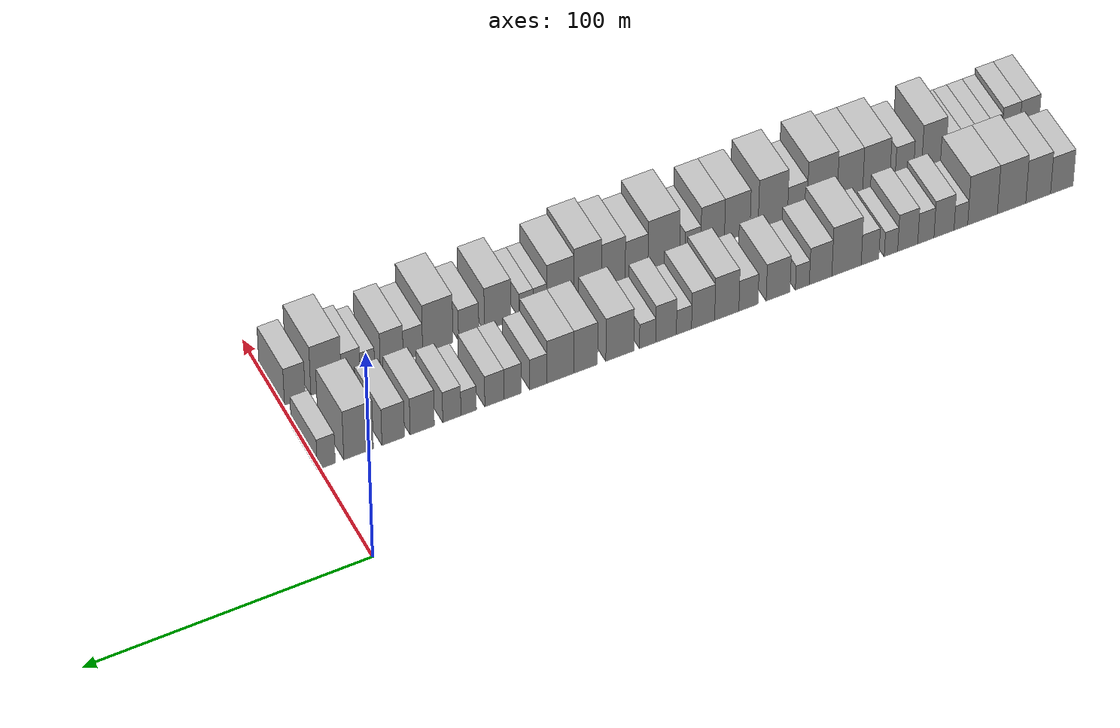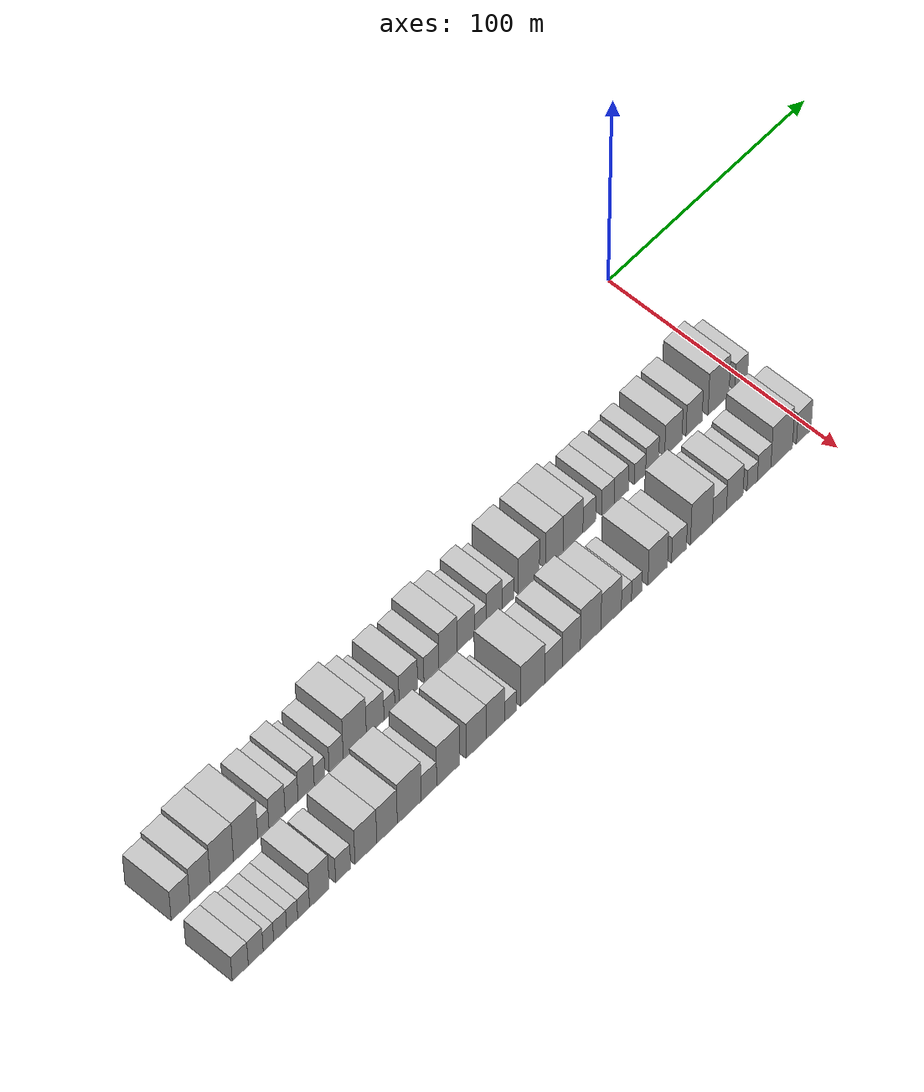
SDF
<sdf version="1.6">
 <world name="default">
  <model name="building_1">
   <static>1</static>
   <pose>50.0000 -270.7462 0 0.000000 0.000000 0.000000</pose>
   <link name="link">
    <pose>0 0 9.00 0 0 0</pose>
    <collision name="collision"><geometry><box><size>20.0000 8.5076 18.0000</size></box></geometry></collision>
    <visual name="visual">
     <cast_shadows>0</cast_shadows>
     <geometry><box><size>20.0000 8.5076 18.0000</size></box></geometry>
     <material>
      <script>
       <uri>model://HANNAS_wall/materials/scripts</uri>
       <uri>model://HANNAS_wall/materials/textures</uri>
       <name>vrc/HANNAS_wall</name>
      </script>
     </material>
    </visual>
   </link>
  </model>
  <model name="building_2">
   <static>1</static>
   <pose>50.0000 -261.8234 0 0.000000 0.000000 0.000000</pose>
   <link name="link">
    <pose>0 0 10.50 0 0 0</pose>
    <collision name="collision"><geometry><box><size>20.0000 9.3380 21.0000</size></box></geometry></collision>
    <visual name="visual">
     <cast_shadows>0</cast_shadows>
     <geometry><box><size>20.0000 9.3380 21.0000</size></box></geometry>
     <material>
      <script>
       <uri>model://HANNAS_wall/materials/scripts</uri>
       <uri>model://HANNAS_wall/materials/textures</uri>
       <name>vrc/HANNAS_wall</name>
      </script>
     </material>
    </visual>
   </link>
  </model>
  <model name="building_3">
   <static>1</static>
   <pose>50.0000 -251.8180 0 0.000000 0.000000 0.000000</pose>
   <link name="link">
    <pose>0 0 12.00 0 0 0</pose>
    <collision name="collision"><geometry><box><size>20.0000 10.6729 24.0000</size></box></geometry></collision>
    <visual name="visual">
     <cast_shadows>0</cast_shadows>
     <geometry><box><size>20.0000 10.6729 24.0000</size></box></geometry>
     <material>
      <script>
       <uri>model://HANNAS_wall/materials/scripts</uri>
       <uri>model://HANNAS_wall/materials/textures</uri>
       <name>vrc/HANNAS_wall</name>
      </script>
     </material>
    </visual>
   </link>
  </model>
  <model name="building_4">
   <static>1</static>
   <pose>50.0000 -240.9079 0 0.000000 0.000000 0.000000</pose>
   <link name="link">
    <pose>0 0 12.00 0 0 0</pose>
    <collision name="collision"><geometry><box><size>20.0000 11.1472 24.0000</size></box></geometry></collision>
    <visual name="visual">
     <cast_shadows>0</cast_shadows>
     <geometry><box><size>20.0000 11.1472 24.0000</size></box></geometry>
     <material>
      <script>
       <uri>model://HANNAS_wall/materials/scripts</uri>
       <uri>model://HANNAS_wall/materials/textures</uri>
       <name>vrc/HANNAS_wall</name>
      </script>
     </material>
    </visual>
   </link>
  </model>
  <model name="building_5">
   <static>1</static>
   <pose>50.0000 -232.7691 0 0.000000 0.000000 0.000000</pose>
   <link name="link">
    <pose>0 0 6.00 0 0 0</pose>
    <collision name="collision"><geometry><box><size>20.0000 5.1303 12.0000</size></box></geometry></collision>
    <visual name="visual">
     <cast_shadows>0</cast_shadows>
     <geometry><box><size>20.0000 5.1303 12.0000</size></box></geometry>
     <material>
      <script>
       <uri>model://HANNAS_wall/materials/scripts</uri>
       <uri>model://HANNAS_wall/materials/textures</uri>
       <name>vrc/HANNAS_wall</name>
      </script>
     </material>
    </visual>
   </link>
  </model>
  <model name="building_6">
   <static>1</static>
   <pose>50.0000 -226.4638 0 0.000000 0.000000 0.000000</pose>
   <link name="link">
    <pose>0 0 9.00 0 0 0</pose>
    <collision name="collision"><geometry><box><size>20.0000 7.4803 18.0000</size></box></geometry></collision>
    <visual name="visual">
     <cast_shadows>0</cast_shadows>
     <geometry><box><size>20.0000 7.4803 18.0000</size></box></geometry>
     <material>
      <script>
       <uri>model://HANNAS_wall/materials/scripts</uri>
       <uri>model://HANNAS_wall/materials/textures</uri>
       <name>vrc/HANNAS_wall</name>
      </script>
     </material>
    </visual>
   </link>
  </model>
  <model name="building_7">
   <static>1</static>
   <pose>50.0000 -219.6944 0 0.000000 0.000000 0.000000</pose>
   <link name="link">
    <pose>0 0 7.50 0 0 0</pose>
    <collision name="collision"><geometry><box><size>20.0000 6.0585 15.0000</size></box></geometry></collision>
    <visual name="visual">
     <cast_shadows>0</cast_shadows>
     <geometry><box><size>20.0000 6.0585 15.0000</size></box></geometry>
     <material>
      <script>
       <uri>model://HANNAS_wall/materials/scripts</uri>
       <uri>model://HANNAS_wall/materials/textures</uri>
       <name>vrc/HANNAS_wall</name>
      </script>
     </material>
    </visual>
   </link>
  </model>
  <model name="building_8">
   <static>1</static>
   <pose>50.0000 -212.9263 0 0.000000 0.000000 0.000000</pose>
   <link name="link">
    <pose>0 0 9.00 0 0 0</pose>
    <collision name="collision"><geometry><box><size>20.0000 7.4778 18.0000</size></box></geometry></collision>
    <visual name="visual">
     <cast_shadows>0</cast_shadows>
     <geometry><box><size>20.0000 7.4778 18.0000</size></box></geometry>
     <material>
      <script>
       <uri>model://HANNAS_wall/materials/scripts</uri>
       <uri>model://HANNAS_wall/materials/textures</uri>
       <name>vrc/HANNAS_wall</name>
      </script>
     </material>
    </visual>
   </link>
  </model>
  <model name="building_9">
   <static>1</static>
   <pose>50.0000 -206.6918 0 0.000000 0.000000 0.000000</pose>
   <link name="link">
    <pose>0 0 6.00 0 0 0</pose>
    <collision name="collision"><geometry><box><size>20.0000 4.9912 12.0000</size></box></geometry></collision>
    <visual name="visual">
     <cast_shadows>0</cast_shadows>
     <geometry><box><size>20.0000 4.9912 12.0000</size></box></geometry>
     <material>
      <script>
       <uri>model://HANNAS_wall/materials/scripts</uri>
       <uri>model://HANNAS_wall/materials/textures</uri>
       <name>vrc/HANNAS_wall</name>
      </script>
     </material>
    </visual>
   </link>
  </model>
  <model name="building_10">
   <static>1</static>
   <pose>50.0000 -198.9097 0 0.000000 0.000000 0.000000</pose>
   <link name="link">
    <pose>0 0 7.50 0 0 0</pose>
    <collision name="collision"><geometry><box><size>20.0000 6.5731 15.0000</size></box></geometry></collision>
    <visual name="visual">
     <cast_shadows>0</cast_shadows>
     <geometry><box><size>20.0000 6.5731 15.0000</size></box></geometry>
     <material>
      <script>
       <uri>model://HANNAS_wall/materials/scripts</uri>
       <uri>model://HANNAS_wall/materials/textures</uri>
       <name>vrc/HANNAS_wall</name>
      </script>
     </material>
    </visual>
   </link>
  </model>
  <model name="building_11">
   <static>1</static>
   <pose>50.0000 -190.1880 0 0.000000 0.000000 0.000000</pose>
   <link name="link">
    <pose>0 0 12.00 0 0 0</pose>
    <collision name="collision"><geometry><box><size>20.0000 10.8702 24.0000</size></box></geometry></collision>
    <visual name="visual">
     <cast_shadows>0</cast_shadows>
     <geometry><box><size>20.0000 10.8702 24.0000</size></box></geometry>
     <material>
      <script>
       <uri>model://HANNAS_wall/materials/scripts</uri>
       <uri>model://HANNAS_wall/materials/textures</uri>
       <name>vrc/HANNAS_wall</name>
      </script>
     </material>
    </visual>
   </link>
  </model>
  <model name="building_12">
   <static>1</static>
   <pose>50.0000 -180.5997 0 0.000000 0.000000 0.000000</pose>
   <link name="link">
    <pose>0 0 9.00 0 0 0</pose>
    <collision name="collision"><geometry><box><size>20.0000 8.3064 18.0000</size></box></geometry></collision>
    <visual name="visual">
     <cast_shadows>0</cast_shadows>
     <geometry><box><size>20.0000 8.3064 18.0000</size></box></geometry>
     <material>
      <script>
       <uri>model://HANNAS_wall/materials/scripts</uri>
       <uri>model://HANNAS_wall/materials/textures</uri>
       <name>vrc/HANNAS_wall</name>
      </script>
     </material>
    </visual>
   </link>
  </model>
  <model name="building_13">
   <static>1</static>
   <pose>50.0000 -173.8752 0 0.000000 0.000000 0.000000</pose>
   <link name="link">
    <pose>0 0 6.00 0 0 0</pose>
    <collision name="collision"><geometry><box><size>20.0000 5.1427 12.0000</size></box></geometry></collision>
    <visual name="visual">
     <cast_shadows>0</cast_shadows>
     <geometry><box><size>20.0000 5.1427 12.0000</size></box></geometry>
     <material>
      <script>
       <uri>model://HANNAS_wall/materials/scripts</uri>
       <uri>model://HANNAS_wall/materials/textures</uri>
       <name>vrc/HANNAS_wall</name>
      </script>
     </material>
    </visual>
   </link>
  </model>
  <model name="building_14">
   <static>1</static>
   <pose>50.0000 -164.9254 0 0.000000 0.000000 0.000000</pose>
   <link name="link">
    <pose>0 0 9.00 0 0 0</pose>
    <collision name="collision"><geometry><box><size>20.0000 8.7569 18.0000</size></box></geometry></collision>
    <visual name="visual">
     <cast_shadows>0</cast_shadows>
     <geometry><box><size>20.0000 8.7569 18.0000</size></box></geometry>
     <material>
      <script>
       <uri>model://HANNAS_wall/materials/scripts</uri>
       <uri>model://HANNAS_wall/materials/textures</uri>
       <name>vrc/HANNAS_wall</name>
      </script>
     </material>
    </visual>
   </link>
  </model>
  <model name="building_15">
   <static>1</static>
   <pose>50.0000 -154.0397 0 0.000000 0.000000 0.000000</pose>
   <link name="link">
    <pose>0 0 7.50 0 0 0</pose>
    <collision name="collision"><geometry><box><size>20.0000 7.0144 15.0000</size></box></geometry></collision>
    <visual name="visual">
     <cast_shadows>0</cast_shadows>
     <geometry><box><size>20.0000 7.0144 15.0000</size></box></geometry>
     <material>
      <script>
       <uri>model://HANNAS_wall/materials/scripts</uri>
       <uri>model://HANNAS_wall/materials/textures</uri>
       <name>vrc/HANNAS_wall</name>
      </script>
     </material>
    </visual>
   </link>
  </model>
  <model name="building_16">
   <static>1</static>
   <pose>50.0000 -146.1024 0 0.000000 0.000000 0.000000</pose>
   <link name="link">
    <pose>0 0 10.50 0 0 0</pose>
    <collision name="collision"><geometry><box><size>20.0000 8.8601 21.0000</size></box></geometry></collision>
    <visual name="visual">
     <cast_shadows>0</cast_shadows>
     <geometry><box><size>20.0000 8.8601 21.0000</size></box></geometry>
     <material>
      <script>
       <uri>model://HANNAS_wall/materials/scripts</uri>
       <uri>model://HANNAS_wall/materials/textures</uri>
       <name>vrc/HANNAS_wall</name>
      </script>
     </material>
    </visual>
   </link>
  </model>
  <model name="building_17">
   <static>1</static>
   <pose>50.0000 -137.4521 0 0.000000 0.000000 0.000000</pose>
   <link name="link">
    <pose>0 0 9.00 0 0 0</pose>
    <collision name="collision"><geometry><box><size>20.0000 8.4406 18.0000</size></box></geometry></collision>
    <visual name="visual">
     <cast_shadows>0</cast_shadows>
     <geometry><box><size>20.0000 8.4406 18.0000</size></box></geometry>
     <material>
      <script>
       <uri>model://HANNAS_wall/materials/scripts</uri>
       <uri>model://HANNAS_wall/materials/textures</uri>
       <name>vrc/HANNAS_wall</name>
      </script>
     </material>
    </visual>
   </link>
  </model>
  <model name="building_18">
   <static>1</static>
   <pose>50.0000 -130.4645 0 0.000000 0.000000 0.000000</pose>
   <link name="link">
    <pose>0 0 6.00 0 0 0</pose>
    <collision name="collision"><geometry><box><size>20.0000 5.5346 12.0000</size></box></geometry></collision>
    <visual name="visual">
     <cast_shadows>0</cast_shadows>
     <geometry><box><size>20.0000 5.5346 12.0000</size></box></geometry>
     <material>
      <script>
       <uri>model://HANNAS_wall/materials/scripts</uri>
       <uri>model://HANNAS_wall/materials/textures</uri>
       <name>vrc/HANNAS_wall</name>
      </script>
     </material>
    </visual>
   </link>
  </model>
  <model name="building_19">
   <static>1</static>
   <pose>50.0000 -123.9493 0 0.000000 0.000000 0.000000</pose>
   <link name="link">
    <pose>0 0 9.00 0 0 0</pose>
    <collision name="collision"><geometry><box><size>20.0000 7.4958 18.0000</size></box></geometry></collision>
    <visual name="visual">
     <cast_shadows>0</cast_shadows>
     <geometry><box><size>20.0000 7.4958 18.0000</size></box></geometry>
     <material>
      <script>
       <uri>model://HANNAS_wall/materials/scripts</uri>
       <uri>model://HANNAS_wall/materials/textures</uri>
       <name>vrc/HANNAS_wall</name>
      </script>
     </material>
    </visual>
   </link>
  </model>
  <model name="building_20">
   <static>1</static>
   <pose>50.0000 -117.2490 0 0.000000 0.000000 0.000000</pose>
   <link name="link">
    <pose>0 0 6.00 0 0 0</pose>
    <collision name="collision"><geometry><box><size>20.0000 5.9047 12.0000</size></box></geometry></collision>
    <visual name="visual">
     <cast_shadows>0</cast_shadows>
     <geometry><box><size>20.0000 5.9047 12.0000</size></box></geometry>
     <material>
      <script>
       <uri>model://HANNAS_wall/materials/scripts</uri>
       <uri>model://HANNAS_wall/materials/textures</uri>
       <name>vrc/HANNAS_wall</name>
      </script>
     </material>
    </visual>
   </link>
  </model>
  <model name="building_21">
   <static>1</static>
   <pose>50.0000 -107.1935 0 0.000000 0.000000 0.000000</pose>
   <link name="link">
    <pose>0 0 10.50 0 0 0</pose>
    <collision name="collision"><geometry><box><size>20.0000 10.2065 21.0000</size></box></geometry></collision>
    <visual name="visual">
     <cast_shadows>0</cast_shadows>
     <geometry><box><size>20.0000 10.2065 21.0000</size></box></geometry>
     <material>
      <script>
       <uri>model://HANNAS_wall/materials/scripts</uri>
       <uri>model://HANNAS_wall/materials/textures</uri>
       <name>vrc/HANNAS_wall</name>
      </script>
     </material>
    </visual>
   </link>
  </model>
  <model name="building_22">
   <static>1</static>
   <pose>50.0000 -94.8351 0 0.000000 0.000000 0.000000</pose>
   <link name="link">
    <pose>0 0 10.50 0 0 0</pose>
    <collision name="collision"><geometry><box><size>20.0000 8.5103 21.0000</size></box></geometry></collision>
    <visual name="visual">
     <cast_shadows>0</cast_shadows>
     <geometry><box><size>20.0000 8.5103 21.0000</size></box></geometry>
     <material>
      <script>
       <uri>model://HANNAS_wall/materials/scripts</uri>
       <uri>model://HANNAS_wall/materials/textures</uri>
       <name>vrc/HANNAS_wall</name>
      </script>
     </material>
    </visual>
   </link>
  </model>
  <model name="building_23">
   <static>1</static>
   <pose>50.0000 -85.7295 0 0.000000 0.000000 0.000000</pose>
   <link name="link">
    <pose>0 0 10.50 0 0 0</pose>
    <collision name="collision"><geometry><box><size>20.0000 9.7010 21.0000</size></box></geometry></collision>
    <visual name="visual">
     <cast_shadows>0</cast_shadows>
     <geometry><box><size>20.0000 9.7010 21.0000</size></box></geometry>
     <material>
      <script>
       <uri>model://HANNAS_wall/materials/scripts</uri>
       <uri>model://HANNAS_wall/materials/textures</uri>
       <name>vrc/HANNAS_wall</name>
      </script>
     </material>
    </visual>
   </link>
  </model>
  <model name="building_24">
   <static>1</static>
   <pose>50.0000 -77.7669 0 0.000000 0.000000 0.000000</pose>
   <link name="link">
    <pose>0 0 7.50 0 0 0</pose>
    <collision name="collision"><geometry><box><size>20.0000 6.2241 15.0000</size></box></geometry></collision>
    <visual name="visual">
     <cast_shadows>0</cast_shadows>
     <geometry><box><size>20.0000 6.2241 15.0000</size></box></geometry>
     <material>
      <script>
       <uri>model://HANNAS_wall/materials/scripts</uri>
       <uri>model://HANNAS_wall/materials/textures</uri>
       <name>vrc/HANNAS_wall</name>
      </script>
     </material>
    </visual>
   </link>
  </model>
  <model name="building_25">
   <static>1</static>
   <pose>50.0000 -68.5766 0 0.000000 0.000000 0.000000</pose>
   <link name="link">
    <pose>0 0 7.50 0 0 0</pose>
    <collision name="collision"><geometry><box><size>20.0000 6.1565 15.0000</size></box></geometry></collision>
    <visual name="visual">
     <cast_shadows>0</cast_shadows>
     <geometry><box><size>20.0000 6.1565 15.0000</size></box></geometry>
     <material>
      <script>
       <uri>model://HANNAS_wall/materials/scripts</uri>
       <uri>model://HANNAS_wall/materials/textures</uri>
       <name>vrc/HANNAS_wall</name>
      </script>
     </material>
    </visual>
   </link>
  </model>
  <model name="building_26">
   <static>1</static>
   <pose>50.0000 -62.0209 0 0.000000 0.000000 0.000000</pose>
   <link name="link">
    <pose>0 0 7.50 0 0 0</pose>
    <collision name="collision"><geometry><box><size>20.0000 6.9550 15.0000</size></box></geometry></collision>
    <visual name="visual">
     <cast_shadows>0</cast_shadows>
     <geometry><box><size>20.0000 6.9550 15.0000</size></box></geometry>
     <material>
      <script>
       <uri>model://HANNAS_wall/materials/scripts</uri>
       <uri>model://HANNAS_wall/materials/textures</uri>
       <name>vrc/HANNAS_wall</name>
      </script>
     </material>
    </visual>
   </link>
  </model>
  <model name="building_27">
   <static>1</static>
   <pose>50.0000 -52.7724 0 0.000000 0.000000 0.000000</pose>
   <link name="link">
    <pose>0 0 6.00 0 0 0</pose>
    <collision name="collision"><geometry><box><size>20.0000 5.5420 12.0000</size></box></geometry></collision>
    <visual name="visual">
     <cast_shadows>0</cast_shadows>
     <geometry><box><size>20.0000 5.5420 12.0000</size></box></geometry>
     <material>
      <script>
       <uri>model://HANNAS_wall/materials/scripts</uri>
       <uri>model://HANNAS_wall/materials/textures</uri>
       <name>vrc/HANNAS_wall</name>
      </script>
     </material>
    </visual>
   </link>
  </model>
  <model name="building_28">
   <static>1</static>
   <pose>50.0000 -46.7659 0 0.000000 0.000000 0.000000</pose>
   <link name="link">
    <pose>0 0 7.50 0 0 0</pose>
    <collision name="collision"><geometry><box><size>20.0000 6.4709 15.0000</size></box></geometry></collision>
    <visual name="visual">
     <cast_shadows>0</cast_shadows>
     <geometry><box><size>20.0000 6.4709 15.0000</size></box></geometry>
     <material>
      <script>
       <uri>model://HANNAS_wall/materials/scripts</uri>
       <uri>model://HANNAS_wall/materials/textures</uri>
       <name>vrc/HANNAS_wall</name>
      </script>
     </material>
    </visual>
   </link>
  </model>
  <model name="building_29">
   <static>1</static>
   <pose>50.0000 -36.2263 0 0.000000 0.000000 0.000000</pose>
   <link name="link">
    <pose>0 0 9.00 0 0 0</pose>
    <collision name="collision"><geometry><box><size>20.0000 8.6084 18.0000</size></box></geometry></collision>
    <visual name="visual">
     <cast_shadows>0</cast_shadows>
     <geometry><box><size>20.0000 8.6084 18.0000</size></box></geometry>
     <material>
      <script>
       <uri>model://HANNAS_wall/materials/scripts</uri>
       <uri>model://HANNAS_wall/materials/textures</uri>
       <name>vrc/HANNAS_wall</name>
      </script>
     </material>
    </visual>
   </link>
  </model>
  <model name="building_30">
   <static>1</static>
   <pose>50.0000 -25.9120 0 0.000000 0.000000 0.000000</pose>
   <link name="link">
    <pose>0 0 9.00 0 0 0</pose>
    <collision name="collision"><geometry><box><size>20.0000 8.0202 18.0000</size></box></geometry></collision>
    <visual name="visual">
     <cast_shadows>0</cast_shadows>
     <geometry><box><size>20.0000 8.0202 18.0000</size></box></geometry>
     <material>
      <script>
       <uri>model://HANNAS_wall/materials/scripts</uri>
       <uri>model://HANNAS_wall/materials/textures</uri>
       <name>vrc/HANNAS_wall</name>
      </script>
     </material>
    </visual>
   </link>
  </model>
  <model name="building_31">
   <static>1</static>
   <pose>50.0000 -13.6503 0 0.000000 0.000000 0.000000</pose>
   <link name="link">
    <pose>0 0 12.00 0 0 0</pose>
    <collision name="collision"><geometry><box><size>20.0000 10.5032 24.0000</size></box></geometry></collision>
    <visual name="visual">
     <cast_shadows>0</cast_shadows>
     <geometry><box><size>20.0000 10.5032 24.0000</size></box></geometry>
     <material>
      <script>
       <uri>model://HANNAS_wall/materials/scripts</uri>
       <uri>model://HANNAS_wall/materials/textures</uri>
       <name>vrc/HANNAS_wall</name>
      </script>
     </material>
    </visual>
   </link>
  </model>
  <model name="building_32">
   <static>1</static>
   <pose>50.0000 -2.2336 0 0.000000 0.000000 0.000000</pose>
   <link name="link">
    <pose>0 0 7.50 0 0 0</pose>
    <collision name="collision"><geometry><box><size>20.0000 6.3303 15.0000</size></box></geometry></collision>
    <visual name="visual">
     <cast_shadows>0</cast_shadows>
     <geometry><box><size>20.0000 6.3303 15.0000</size></box></geometry>
     <material>
      <script>
       <uri>model://HANNAS_wall/materials/scripts</uri>
       <uri>model://HANNAS_wall/materials/textures</uri>
       <name>vrc/HANNAS_wall</name>
      </script>
     </material>
    </visual>
   </link>
  </model>
  <model name="building_67">
   <static>1</static>
   <pose>79.0000 -274.3399 0 0.000000 0.000000 0.000000</pose>
   <link name="link">
    <pose>0 0 7.50 0 0 0</pose>
    <collision name="collision"><geometry><box><size>20.0000 7.3201 15.0000</size></box></geometry></collision>
    <visual name="visual">
     <cast_shadows>0</cast_shadows>
     <geometry><box><size>20.0000 7.3201 15.0000</size></box></geometry>
     <material>
      <script>
       <uri>model://HANNAS_wall/materials/scripts</uri>
       <uri>model://HANNAS_wall/materials/textures</uri>
       <name>vrc/HANNAS_wall</name>
      </script>
     </material>
    </visual>
   </link>
  </model>
  <model name="building_68">
   <static>1</static>
   <pose>79.0000 -267.2750 0 0.000000 0.000000 0.000000</pose>
   <link name="link">
    <pose>0 0 7.50 0 0 0</pose>
    <collision name="collision"><geometry><box><size>20.0000 6.8098 15.0000</size></box></geometry></collision>
    <visual name="visual">
     <cast_shadows>0</cast_shadows>
     <geometry><box><size>20.0000 6.8098 15.0000</size></box></geometry>
     <material>
      <script>
       <uri>model://HANNAS_wall/materials/scripts</uri>
       <uri>model://HANNAS_wall/materials/textures</uri>
       <name>vrc/HANNAS_wall</name>
      </script>
     </material>
    </visual>
   </link>
  </model>
  <model name="building_69">
   <static>1</static>
   <pose>79.0000 -261.4668 0 0.000000 0.000000 0.000000</pose>
   <link name="link">
    <pose>0 0 6.00 0 0 0</pose>
    <collision name="collision"><geometry><box><size>20.0000 4.8066 12.0000</size></box></geometry></collision>
    <visual name="visual">
     <cast_shadows>0</cast_shadows>
     <geometry><box><size>20.0000 4.8066 12.0000</size></box></geometry>
     <material>
      <script>
       <uri>model://HANNAS_wall/materials/scripts</uri>
       <uri>model://HANNAS_wall/materials/textures</uri>
       <name>vrc/HANNAS_wall</name>
      </script>
     </material>
    </visual>
   </link>
  </model>
  <model name="building_70">
   <static>1</static>
   <pose>79.0000 -256.1150 0 0.000000 0.000000 0.000000</pose>
   <link name="link">
    <pose>0 0 6.00 0 0 0</pose>
    <collision name="collision"><geometry><box><size>20.0000 5.8970 12.0000</size></box></geometry></collision>
    <visual name="visual">
     <cast_shadows>0</cast_shadows>
     <geometry><box><size>20.0000 5.8970 12.0000</size></box></geometry>
     <material>
      <script>
       <uri>model://HANNAS_wall/materials/scripts</uri>
       <uri>model://HANNAS_wall/materials/textures</uri>
       <name>vrc/HANNAS_wall</name>
      </script>
     </material>
    </visual>
   </link>
  </model>
  <model name="building_71">
   <static>1</static>
   <pose>79.0000 -250.6101 0 0.000000 0.000000 0.000000</pose>
   <link name="link">
    <pose>0 0 6.00 0 0 0</pose>
    <collision name="collision"><geometry><box><size>20.0000 5.1128 12.0000</size></box></geometry></collision>
    <visual name="visual">
     <cast_shadows>0</cast_shadows>
     <geometry><box><size>20.0000 5.1128 12.0000</size></box></geometry>
     <material>
      <script>
       <uri>model://HANNAS_wall/materials/scripts</uri>
       <uri>model://HANNAS_wall/materials/textures</uri>
       <name>vrc/HANNAS_wall</name>
      </script>
     </material>
    </visual>
   </link>
  </model>
  <model name="building_72">
   <static>1</static>
   <pose>79.0000 -245.3361 0 0.000000 0.000000 0.000000</pose>
   <link name="link">
    <pose>0 0 6.00 0 0 0</pose>
    <collision name="collision"><geometry><box><size>20.0000 5.4352 12.0000</size></box></geometry></collision>
    <visual name="visual">
     <cast_shadows>0</cast_shadows>
     <geometry><box><size>20.0000 5.4352 12.0000</size></box></geometry>
     <material>
      <script>
       <uri>model://HANNAS_wall/materials/scripts</uri>
       <uri>model://HANNAS_wall/materials/textures</uri>
       <name>vrc/HANNAS_wall</name>
      </script>
     </material>
    </visual>
   </link>
  </model>
  <model name="building_73">
   <static>1</static>
   <pose>79.0000 -238.0942 0 0.000000 0.000000 0.000000</pose>
   <link name="link">
    <pose>0 0 10.50 0 0 0</pose>
    <collision name="collision"><geometry><box><size>20.0000 9.0486 21.0000</size></box></geometry></collision>
    <visual name="visual">
     <cast_shadows>0</cast_shadows>
     <geometry><box><size>20.0000 9.0486 21.0000</size></box></geometry>
     <material>
      <script>
       <uri>model://HANNAS_wall/materials/scripts</uri>
       <uri>model://HANNAS_wall/materials/textures</uri>
       <name>vrc/HANNAS_wall</name>
      </script>
     </material>
    </visual>
   </link>
  </model>
  <model name="building_74">
   <static>1</static>
   <pose>79.0000 -227.0913 0 0.000000 0.000000 0.000000</pose>
   <link name="link">
    <pose>0 0 7.50 0 0 0</pose>
    <collision name="collision"><geometry><box><size>20.0000 6.9572 15.0000</size></box></geometry></collision>
    <visual name="visual">
     <cast_shadows>0</cast_shadows>
     <geometry><box><size>20.0000 6.9572 15.0000</size></box></geometry>
     <material>
      <script>
       <uri>model://HANNAS_wall/materials/scripts</uri>
       <uri>model://HANNAS_wall/materials/textures</uri>
       <name>vrc/HANNAS_wall</name>
      </script>
     </material>
    </visual>
   </link>
  </model>
  <model name="building_75">
   <static>1</static>
   <pose>79.0000 -216.5348 0 0.000000 0.000000 0.000000</pose>
   <link name="link">
    <pose>0 0 10.50 0 0 0</pose>
    <collision name="collision"><geometry><box><size>20.0000 10.1557 21.0000</size></box></geometry></collision>
    <visual name="visual">
     <cast_shadows>0</cast_shadows>
     <geometry><box><size>20.0000 10.1557 21.0000</size></box></geometry>
     <material>
      <script>
       <uri>model://HANNAS_wall/materials/scripts</uri>
       <uri>model://HANNAS_wall/materials/textures</uri>
       <name>vrc/HANNAS_wall</name>
      </script>
     </material>
    </visual>
   </link>
  </model>
  <model name="building_76">
   <static>1</static>
   <pose>79.0000 -206.6600 0 0.000000 0.000000 0.000000</pose>
   <link name="link">
    <pose>0 0 10.50 0 0 0</pose>
    <collision name="collision"><geometry><box><size>20.0000 9.5939 21.0000</size></box></geometry></collision>
    <visual name="visual">
     <cast_shadows>0</cast_shadows>
     <geometry><box><size>20.0000 9.5939 21.0000</size></box></geometry>
     <material>
      <script>
       <uri>model://HANNAS_wall/materials/scripts</uri>
       <uri>model://HANNAS_wall/materials/textures</uri>
       <name>vrc/HANNAS_wall</name>
      </script>
     </material>
    </visual>
   </link>
  </model>
  <model name="building_77">
   <static>1</static>
   <pose>79.0000 -196.2464 0 0.000000 0.000000 0.000000</pose>
   <link name="link">
    <pose>0 0 12.00 0 0 0</pose>
    <collision name="collision"><geometry><box><size>20.0000 11.2332 24.0000</size></box></geometry></collision>
    <visual name="visual">
     <cast_shadows>0</cast_shadows>
     <geometry><box><size>20.0000 11.2332 24.0000</size></box></geometry>
     <material>
      <script>
       <uri>model://HANNAS_wall/materials/scripts</uri>
       <uri>model://HANNAS_wall/materials/textures</uri>
       <name>vrc/HANNAS_wall</name>
      </script>
     </material>
    </visual>
   </link>
  </model>
  <model name="building_78">
   <static>1</static>
   <pose>79.0000 -186.9964 0 0.000000 0.000000 0.000000</pose>
   <link name="link">
    <pose>0 0 7.50 0 0 0</pose>
    <collision name="collision"><geometry><box><size>20.0000 7.2668 15.0000</size></box></geometry></collision>
    <visual name="visual">
     <cast_shadows>0</cast_shadows>
     <geometry><box><size>20.0000 7.2668 15.0000</size></box></geometry>
     <material>
      <script>
       <uri>model://HANNAS_wall/materials/scripts</uri>
       <uri>model://HANNAS_wall/materials/textures</uri>
       <name>vrc/HANNAS_wall</name>
      </script>
     </material>
    </visual>
   </link>
  </model>
  <model name="building_79">
   <static>1</static>
   <pose>79.0000 -177.9135 0 0.000000 0.000000 0.000000</pose>
   <link name="link">
    <pose>0 0 12.00 0 0 0</pose>
    <collision name="collision"><geometry><box><size>20.0000 10.8989 24.0000</size></box></geometry></collision>
    <visual name="visual">
     <cast_shadows>0</cast_shadows>
     <geometry><box><size>20.0000 10.8989 24.0000</size></box></geometry>
     <material>
      <script>
       <uri>model://HANNAS_wall/materials/scripts</uri>
       <uri>model://HANNAS_wall/materials/textures</uri>
       <name>vrc/HANNAS_wall</name>
      </script>
     </material>
    </visual>
   </link>
  </model>
  <model name="building_80">
   <static>1</static>
   <pose>79.0000 -164.7304 0 0.000000 0.000000 0.000000</pose>
   <link name="link">
    <pose>0 0 10.50 0 0 0</pose>
    <collision name="collision"><geometry><box><size>20.0000 9.4673 21.0000</size></box></geometry></collision>
    <visual name="visual">
     <cast_shadows>0</cast_shadows>
     <geometry><box><size>20.0000 9.4673 21.0000</size></box></geometry>
     <material>
      <script>
       <uri>model://HANNAS_wall/materials/scripts</uri>
       <uri>model://HANNAS_wall/materials/textures</uri>
       <name>vrc/HANNAS_wall</name>
      </script>
     </material>
    </visual>
   </link>
  </model>
  <model name="building_81">
   <static>1</static>
   <pose>79.0000 -155.6298 0 0.000000 0.000000 0.000000</pose>
   <link name="link">
    <pose>0 0 10.50 0 0 0</pose>
    <collision name="collision"><geometry><box><size>20.0000 8.7340 21.0000</size></box></geometry></collision>
    <visual name="visual">
     <cast_shadows>0</cast_shadows>
     <geometry><box><size>20.0000 8.7340 21.0000</size></box></geometry>
     <material>
      <script>
       <uri>model://HANNAS_wall/materials/scripts</uri>
       <uri>model://HANNAS_wall/materials/textures</uri>
       <name>vrc/HANNAS_wall</name>
      </script>
     </material>
    </visual>
   </link>
  </model>
  <model name="building_82">
   <static>1</static>
   <pose>79.0000 -148.3466 0 0.000000 0.000000 0.000000</pose>
   <link name="link">
    <pose>0 0 6.00 0 0 0</pose>
    <collision name="collision"><geometry><box><size>20.0000 5.8322 12.0000</size></box></geometry></collision>
    <visual name="visual">
     <cast_shadows>0</cast_shadows>
     <geometry><box><size>20.0000 5.8322 12.0000</size></box></geometry>
     <material>
      <script>
       <uri>model://HANNAS_wall/materials/scripts</uri>
       <uri>model://HANNAS_wall/materials/textures</uri>
       <name>vrc/HANNAS_wall</name>
      </script>
     </material>
    </visual>
   </link>
  </model>
  <model name="building_83">
   <static>1</static>
   <pose>79.0000 -137.6310 0 0.000000 0.000000 0.000000</pose>
   <link name="link">
    <pose>0 0 12.00 0 0 0</pose>
    <collision name="collision"><geometry><box><size>20.0000 11.5992 24.0000</size></box></geometry></collision>
    <visual name="visual">
     <cast_shadows>0</cast_shadows>
     <geometry><box><size>20.0000 11.5992 24.0000</size></box></geometry>
     <material>
      <script>
       <uri>model://HANNAS_wall/materials/scripts</uri>
       <uri>model://HANNAS_wall/materials/textures</uri>
       <name>vrc/HANNAS_wall</name>
      </script>
     </material>
    </visual>
   </link>
  </model>
  <model name="building_84">
   <static>1</static>
   <pose>79.0000 -127.6749 0 0.000000 0.000000 0.000000</pose>
   <link name="link">
    <pose>0 0 9.00 0 0 0</pose>
    <collision name="collision"><geometry><box><size>20.0000 8.3130 18.0000</size></box></geometry></collision>
    <visual name="visual">
     <cast_shadows>0</cast_shadows>
     <geometry><box><size>20.0000 8.3130 18.0000</size></box></geometry>
     <material>
      <script>
       <uri>model://HANNAS_wall/materials/scripts</uri>
       <uri>model://HANNAS_wall/materials/textures</uri>
       <name>vrc/HANNAS_wall</name>
      </script>
     </material>
    </visual>
   </link>
  </model>
  <model name="building_85">
   <static>1</static>
   <pose>79.0000 -119.1593 0 0.000000 0.000000 0.000000</pose>
   <link name="link">
    <pose>0 0 10.50 0 0 0</pose>
    <collision name="collision"><geometry><box><size>20.0000 8.7181 21.0000</size></box></geometry></collision>
    <visual name="visual">
     <cast_shadows>0</cast_shadows>
     <geometry><box><size>20.0000 8.7181 21.0000</size></box></geometry>
     <material>
      <script>
       <uri>model://HANNAS_wall/materials/scripts</uri>
       <uri>model://HANNAS_wall/materials/textures</uri>
       <name>vrc/HANNAS_wall</name>
      </script>
     </material>
    </visual>
   </link>
  </model>
  <model name="building_86">
   <static>1</static>
   <pose>79.0000 -109.8181 0 0.000000 0.000000 0.000000</pose>
   <link name="link">
    <pose>0 0 12.00 0 0 0</pose>
    <collision name="collision"><geometry><box><size>20.0000 9.9644 24.0000</size></box></geometry></collision>
    <visual name="visual">
     <cast_shadows>0</cast_shadows>
     <geometry><box><size>20.0000 9.9644 24.0000</size></box></geometry>
     <material>
      <script>
       <uri>model://HANNAS_wall/materials/scripts</uri>
       <uri>model://HANNAS_wall/materials/textures</uri>
       <name>vrc/HANNAS_wall</name>
      </script>
     </material>
    </visual>
   </link>
  </model>
  <model name="building_87">
   <static>1</static>
   <pose>79.0000 -99.8747 0 0.000000 0.000000 0.000000</pose>
   <link name="link">
    <pose>0 0 10.50 0 0 0</pose>
    <collision name="collision"><geometry><box><size>20.0000 9.9224 21.0000</size></box></geometry></collision>
    <visual name="visual">
     <cast_shadows>0</cast_shadows>
     <geometry><box><size>20.0000 9.9224 21.0000</size></box></geometry>
     <material>
      <script>
       <uri>model://HANNAS_wall/materials/scripts</uri>
       <uri>model://HANNAS_wall/materials/textures</uri>
       <name>vrc/HANNAS_wall</name>
      </script>
     </material>
    </visual>
   </link>
  </model>
  <model name="building_88">
   <static>1</static>
   <pose>79.0000 -92.4415 0 0.000000 0.000000 0.000000</pose>
   <link name="link">
    <pose>0 0 6.00 0 0 0</pose>
    <collision name="collision"><geometry><box><size>20.0000 4.9440 12.0000</size></box></geometry></collision>
    <visual name="visual">
     <cast_shadows>0</cast_shadows>
     <geometry><box><size>20.0000 4.9440 12.0000</size></box></geometry>
     <material>
      <script>
       <uri>model://HANNAS_wall/materials/scripts</uri>
       <uri>model://HANNAS_wall/materials/textures</uri>
       <name>vrc/HANNAS_wall</name>
      </script>
     </material>
    </visual>
   </link>
  </model>
  <model name="building_89">
   <static>1</static>
   <pose>79.0000 -87.4241 0 0.000000 0.000000 0.000000</pose>
   <link name="link">
    <pose>0 0 6.00 0 0 0</pose>
    <collision name="collision"><geometry><box><size>20.0000 5.0908 12.0000</size></box></geometry></collision>
    <visual name="visual">
     <cast_shadows>0</cast_shadows>
     <geometry><box><size>20.0000 5.0908 12.0000</size></box></geometry>
     <material>
      <script>
       <uri>model://HANNAS_wall/materials/scripts</uri>
       <uri>model://HANNAS_wall/materials/textures</uri>
       <name>vrc/HANNAS_wall</name>
      </script>
     </material>
    </visual>
   </link>
  </model>
  <model name="building_90">
   <static>1</static>
   <pose>79.0000 -77.1088 0 0.000000 0.000000 0.000000</pose>
   <link name="link">
    <pose>0 0 10.50 0 0 0</pose>
    <collision name="collision"><geometry><box><size>20.0000 9.5397 21.0000</size></box></geometry></collision>
    <visual name="visual">
     <cast_shadows>0</cast_shadows>
     <geometry><box><size>20.0000 9.5397 21.0000</size></box></geometry>
     <material>
      <script>
       <uri>model://HANNAS_wall/materials/scripts</uri>
       <uri>model://HANNAS_wall/materials/textures</uri>
       <name>vrc/HANNAS_wall</name>
      </script>
     </material>
    </visual>
   </link>
  </model>
  <model name="building_91">
   <static>1</static>
   <pose>79.0000 -66.6659 0 0.000000 0.000000 0.000000</pose>
   <link name="link">
    <pose>0 0 7.50 0 0 0</pose>
    <collision name="collision"><geometry><box><size>20.0000 7.3461 15.0000</size></box></geometry></collision>
    <visual name="visual">
     <cast_shadows>0</cast_shadows>
     <geometry><box><size>20.0000 7.3461 15.0000</size></box></geometry>
     <material>
      <script>
       <uri>model://HANNAS_wall/materials/scripts</uri>
       <uri>model://HANNAS_wall/materials/textures</uri>
       <name>vrc/HANNAS_wall</name>
      </script>
     </material>
    </visual>
   </link>
  </model>
  <model name="building_92">
   <static>1</static>
   <pose>79.0000 -55.5421 0 0.000000 0.000000 0.000000</pose>
   <link name="link">
    <pose>0 0 12.00 0 0 0</pose>
    <collision name="collision"><geometry><box><size>20.0000 10.9016 24.0000</size></box></geometry></collision>
    <visual name="visual">
     <cast_shadows>0</cast_shadows>
     <geometry><box><size>20.0000 10.9016 24.0000</size></box></geometry>
     <material>
      <script>
       <uri>model://HANNAS_wall/materials/scripts</uri>
       <uri>model://HANNAS_wall/materials/textures</uri>
       <name>vrc/HANNAS_wall</name>
      </script>
     </material>
    </visual>
   </link>
  </model>
  <model name="building_93">
   <static>1</static>
   <pose>79.0000 -46.6100 0 0.000000 0.000000 0.000000</pose>
   <link name="link">
    <pose>0 0 7.50 0 0 0</pose>
    <collision name="collision"><geometry><box><size>20.0000 6.9625 15.0000</size></box></geometry></collision>
    <visual name="visual">
     <cast_shadows>0</cast_shadows>
     <geometry><box><size>20.0000 6.9625 15.0000</size></box></geometry>
     <material>
      <script>
       <uri>model://HANNAS_wall/materials/scripts</uri>
       <uri>model://HANNAS_wall/materials/textures</uri>
       <name>vrc/HANNAS_wall</name>
      </script>
     </material>
    </visual>
   </link>
  </model>
  <model name="building_94">
   <static>1</static>
   <pose>79.0000 -39.0178 0 0.000000 0.000000 0.000000</pose>
   <link name="link">
    <pose>0 0 9.00 0 0 0</pose>
    <collision name="collision"><geometry><box><size>20.0000 8.2219 18.0000</size></box></geometry></collision>
    <visual name="visual">
     <cast_shadows>0</cast_shadows>
     <geometry><box><size>20.0000 8.2219 18.0000</size></box></geometry>
     <material>
      <script>
       <uri>model://HANNAS_wall/materials/scripts</uri>
       <uri>model://HANNAS_wall/materials/textures</uri>
       <name>vrc/HANNAS_wall</name>
      </script>
     </material>
    </visual>
   </link>
  </model>
  <model name="building_95">
   <static>1</static>
   <pose>79.0000 -30.3273 0 0.000000 0.000000 0.000000</pose>
   <link name="link">
    <pose>0 0 6.00 0 0 0</pose>
    <collision name="collision"><geometry><box><size>20.0000 5.1592 12.0000</size></box></geometry></collision>
    <visual name="visual">
     <cast_shadows>0</cast_shadows>
     <geometry><box><size>20.0000 5.1592 12.0000</size></box></geometry>
     <material>
      <script>
       <uri>model://HANNAS_wall/materials/scripts</uri>
       <uri>model://HANNAS_wall/materials/textures</uri>
       <name>vrc/HANNAS_wall</name>
      </script>
     </material>
    </visual>
   </link>
  </model>
  <model name="building_96">
   <static>1</static>
   <pose>79.0000 -24.3715 0 0.000000 0.000000 0.000000</pose>
   <link name="link">
    <pose>0 0 7.50 0 0 0</pose>
    <collision name="collision"><geometry><box><size>20.0000 6.7523 15.0000</size></box></geometry></collision>
    <visual name="visual">
     <cast_shadows>0</cast_shadows>
     <geometry><box><size>20.0000 6.7523 15.0000</size></box></geometry>
     <material>
      <script>
       <uri>model://HANNAS_wall/materials/scripts</uri>
       <uri>model://HANNAS_wall/materials/textures</uri>
       <name>vrc/HANNAS_wall</name>
      </script>
     </material>
    </visual>
   </link>
  </model>
  <model name="building_97">
   <static>1</static>
   <pose>79.0000 -15.5728 0 0.000000 0.000000 0.000000</pose>
   <link name="link">
    <pose>0 0 12.00 0 0 0</pose>
    <collision name="collision"><geometry><box><size>20.0000 10.8451 24.0000</size></box></geometry></collision>
    <visual name="visual">
     <cast_shadows>0</cast_shadows>
     <geometry><box><size>20.0000 10.8451 24.0000</size></box></geometry>
     <material>
      <script>
       <uri>model://HANNAS_wall/materials/scripts</uri>
       <uri>model://HANNAS_wall/materials/textures</uri>
       <name>vrc/HANNAS_wall</name>
      </script>
     </material>
    </visual>
   </link>
  </model>
  <model name="building_98">
   <static>1</static>
   <pose>79.0000 -4.4598 0 0.000000 0.000000 0.000000</pose>
   <link name="link">
    <pose>0 0 9.00 0 0 0</pose>
    <collision name="collision"><geometry><box><size>20.0000 7.3810 18.0000</size></box></geometry></collision>
    <visual name="visual">
     <cast_shadows>0</cast_shadows>
     <geometry><box><size>20.0000 7.3810 18.0000</size></box></geometry>
     <material>
      <script>
       <uri>model://HANNAS_wall/materials/scripts</uri>
       <uri>model://HANNAS_wall/materials/textures</uri>
       <name>vrc/HANNAS_wall</name>
      </script>
     </material>
    </visual>
   </link>
  </model>
 </world>
</sdf>
